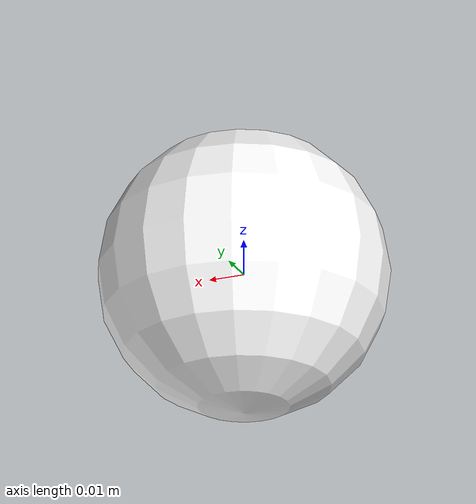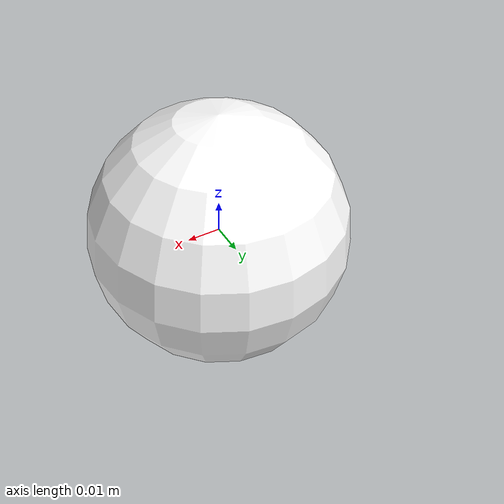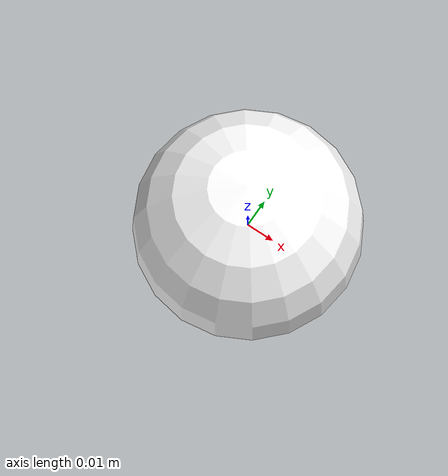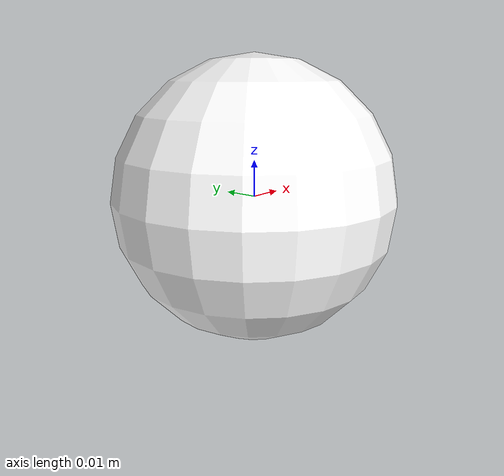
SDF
<?xml version="1.0" ?>
<sdf version="1.5">
  <model name="baseball">
    <link name="link">
      <inertial>
        <mass>0.145</mass>
        <!-- sphere: r=0.039m — I=2/5*m*r² -->
        <inertia>
          <ixx>0.0000882</ixx><ixy>0</ixy><ixz>0</ixz>
          <iyy>0.0000882</iyy><iyz>0</iyz><izz>0.0000882</izz>
        </inertia>
      </inertial>
      <collision name="collision">
        <geometry><sphere><radius>0.039</radius></sphere></geometry>
              <surface>
          <friction>
            <ode>
              <mu>0.5</mu>
              <mu2>0.5</mu2>
            </ode>
            <torsional>
              <coefficient>0.5</coefficient>
              <surface_radius>0.01</surface_radius>
            </torsional>
          </friction>
          <contact>
            <ode>
              <kp>1e6</kp>
              <kd>50</kd>
              <min_depth>0.001</min_depth>
              <max_vel>0.01</max_vel>
            </ode>
          </contact>
        </surface>
      </collision>
      <visual name="visual">
        <geometry><sphere><radius>0.039</radius></sphere></geometry>
        <material>
          <ambient>1.0 1.0 1.0 1</ambient><diffuse>1.0 1.0 1.0 1</diffuse>
        </material>
      </visual>
    </link>
  </model>
</sdf>
